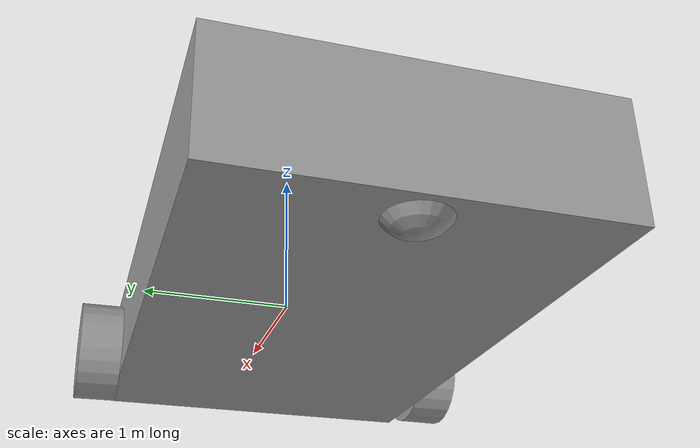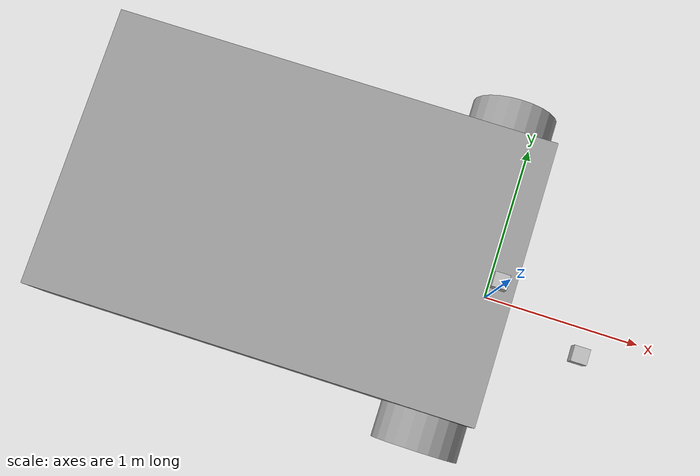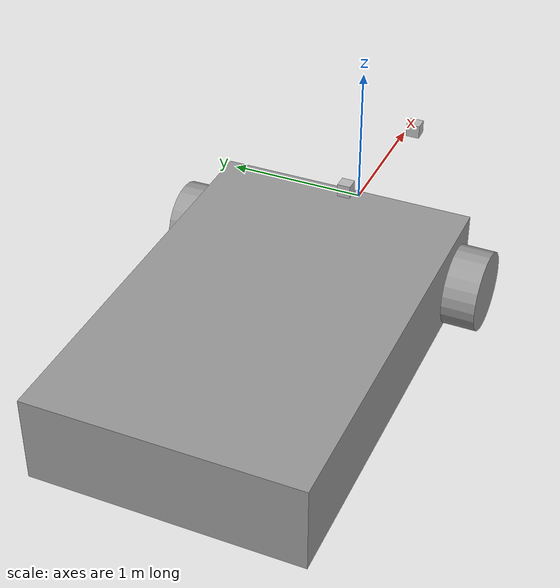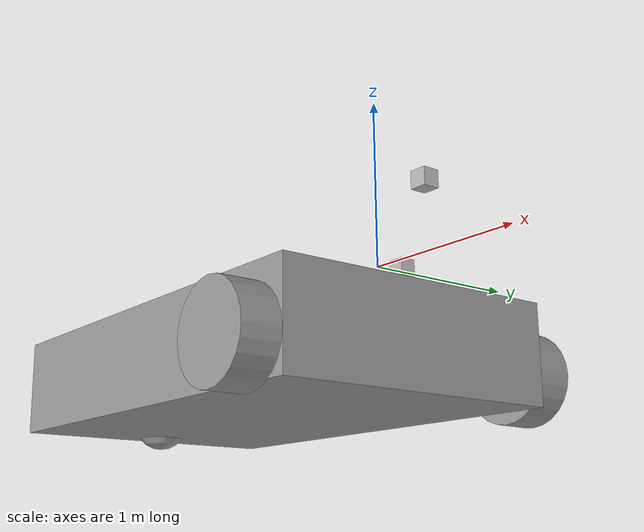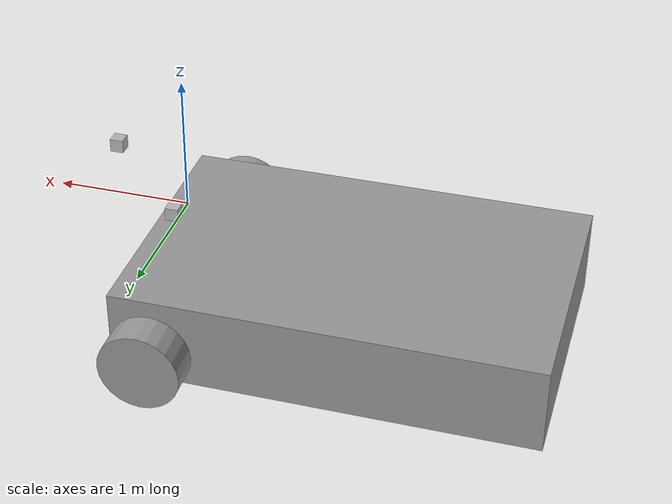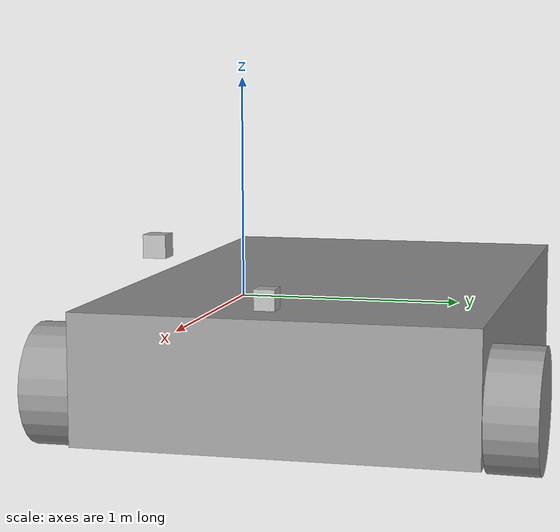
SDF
<?xml version='1.0'?>
<sdf version='1.6'>
  <model name='Untitled'>
    <model name='First_BOT'>
      <model name='Untitled_1'>
        <link name='link_0'>
          <inertial>
            <mass>3.84176</mass>
            <inertia>
              <ixx>1.34552</ixx>
              <ixy>0</ixy>
              <ixz>0</ixz>
              <iyy>3.1403</iyy>
              <iyz>0</iyz>
              <izz>4.22024</izz>
            </inertia>
            <pose frame=''>0 0 0 0 -0 0</pose>
          </inertial>
          <pose frame=''>-0.283122 -0.000178 0.09539 0 -0 0</pose>
          <gravity>1</gravity>
          <self_collide>0</self_collide>
          <kinematic>0</kinematic>
          <enable_wind>0</enable_wind>
          <visual name='visual'>
            <pose frame=''>0 0 0 0 -0 0</pose>
            <geometry>
              <box>
                <size>3.06499 1.94629 0.64404</size>
              </box>
            </geometry>
            <material>
              <lighting>1</lighting>
              <script>
                <uri>file://media/materials/scripts/gazebo.material</uri>
                <name>Gazebo/Grey</name>
              </script>
              <shader type='vertex'>
                <normal_map>__default__</normal_map>
              </shader>
              <ambient>0.3 0.3 0.3 1</ambient>
              <diffuse>0.7 0.7 0.7 1</diffuse>
              <specular>0.01 0.01 0.01 1</specular>
              <emissive>0 0 0 1</emissive>
            </material>
            <transparency>0</transparency>
            <cast_shadows>1</cast_shadows>
          </visual>
          <collision name='collision'>
            <laser_retro>0</laser_retro>
            <max_contacts>10</max_contacts>
            <pose frame=''>0 0 0 0 -0 0</pose>
            <geometry>
              <box>
                <size>3.06499 1.94629 0.64404</size>
              </box>
            </geometry>
            <surface>
              <friction>
                <ode>
                  <mu>1</mu>
                  <mu2>1</mu2>
                  <fdir1>0 0 0</fdir1>
                  <slip1>0</slip1>
                  <slip2>0</slip2>
                </ode>
                <torsional>
                  <coefficient>1</coefficient>
                  <patch_radius>0</patch_radius>
                  <surface_radius>0</surface_radius>
                  <use_patch_radius>1</use_patch_radius>
                  <ode>
                    <slip>0</slip>
                  </ode>
                </torsional>
              </friction>
              <bounce>
                <restitution_coefficient>0</restitution_coefficient>
                <threshold>1e+06</threshold>
              </bounce>
              <contact>
                <collide_without_contact>0</collide_without_contact>
                <collide_without_contact_bitmask>1</collide_without_contact_bitmask>
                <collide_bitmask>1</collide_bitmask>
                <ode>
                  <soft_cfm>0</soft_cfm>
                  <soft_erp>0.2</soft_erp>
                  <kp>1e+13</kp>
                  <kd>1</kd>
                  <max_vel>0.01</max_vel>
                  <min_depth>0</min_depth>
                </ode>
                <bullet>
                  <split_impulse>1</split_impulse>
                  <split_impulse_penetration_threshold>-0.01</split_impulse_penetration_threshold>
                  <soft_cfm>0</soft_cfm>
                  <soft_erp>0.2</soft_erp>
                  <kp>1e+13</kp>
                  <kd>1</kd>
                </bullet>
              </contact>
            </surface>
          </collision>
        </link>
        <link name='link_2'>
          <inertial>
            <mass>1</mass>
            <inertia>
              <ixx>0.145833</ixx>
              <ixy>0</ixy>
              <ixz>0</ixz>
              <iyy>0.145833</iyy>
              <iyz>0</iyz>
              <izz>0.125</izz>
            </inertia>
            <pose frame=''>0 0 0 1.5707 -0 0</pose>
          </inertial>
          <pose frame=''>0.949368 1.09916 -0.003911 -1.58269 0 0</pose>
          <gravity>1</gravity>
          <self_collide>0</self_collide>
          <kinematic>0</kinematic>
          <enable_wind>0</enable_wind>
          <visual name='visual'>
            <pose frame=''>0 0 0 0 -0 0</pose>
            <geometry>
              <cylinder>
                <radius>0.3</radius>
                <length>0.25</length>
              </cylinder>
            </geometry>
            <material>
              <lighting>1</lighting>
              <script>
                <uri>file://media/materials/scripts/gazebo.material</uri>
                <name>Gazebo/Grey</name>
              </script>
              <shader type='vertex'>
                <normal_map>__default__</normal_map>
              </shader>
              <ambient>0.3 0.3 0.3 1</ambient>
              <diffuse>0.7 0.7 0.7 1</diffuse>
              <specular>0.01 0.01 0.01 1</specular>
              <emissive>0 0 0 1</emissive>
            </material>
            <transparency>0</transparency>
            <cast_shadows>1</cast_shadows>
          </visual>
          <collision name='collision'>
            <laser_retro>0</laser_retro>
            <max_contacts>10</max_contacts>
            <pose frame=''>0 0 0 0 -0 0</pose>
            <geometry>
              <cylinder>
                <radius>0.3</radius>
                <length>0.25</length>
              </cylinder>
            </geometry>
            <surface>
              <friction>
                <ode>
                  <mu>1</mu>
                  <mu2>1</mu2>
                  <fdir1>0 0 0</fdir1>
                  <slip1>0</slip1>
                  <slip2>0</slip2>
                </ode>
                <torsional>
                  <coefficient>1</coefficient>
                  <patch_radius>0</patch_radius>
                  <surface_radius>0</surface_radius>
                  <use_patch_radius>1</use_patch_radius>
                  <ode>
                    <slip>0</slip>
                  </ode>
                </torsional>
              </friction>
              <bounce>
                <restitution_coefficient>0</restitution_coefficient>
                <threshold>1e+06</threshold>
              </bounce>
              <contact>
                <collide_without_contact>0</collide_without_contact>
                <collide_without_contact_bitmask>1</collide_without_contact_bitmask>
                <collide_bitmask>1</collide_bitmask>
                <ode>
                  <soft_cfm>0</soft_cfm>
                  <soft_erp>0.2</soft_erp>
                  <kp>1e+13</kp>
                  <kd>1</kd>
                  <max_vel>0.01</max_vel>
                  <min_depth>0</min_depth>
                </ode>
                <bullet>
                  <split_impulse>1</split_impulse>
                  <split_impulse_penetration_threshold>-0.01</split_impulse_penetration_threshold>
                  <soft_cfm>0</soft_cfm>
                  <soft_erp>0.2</soft_erp>
                  <kp>1e+13</kp>
                  <kd>1</kd>
                </bullet>
              </contact>
            </surface>
          </collision>
        </link>
        <link name='link_2_clone'>
          <inertial>
            <mass>1</mass>
            <inertia>
              <ixx>0.145833</ixx>
              <ixy>0</ixy>
              <ixz>0</ixz>
              <iyy>0.145833</iyy>
              <iyz>0</iyz>
              <izz>0.125</izz>
            </inertia>
            <pose frame=''>0 0 0.3 1.5707 -0 0</pose>
          </inertial>
          <pose frame=''>0.949368 -1.0988 0.01483 1.57482 -0 0</pose>
          <gravity>1</gravity>
          <self_collide>0</self_collide>
          <kinematic>0</kinematic>
          <enable_wind>0</enable_wind>
          <visual name='visual'>
            <pose frame=''>0 0 0 0 -0 0</pose>
            <geometry>
              <cylinder>
                <radius>0.3</radius>
                <length>0.25</length>
              </cylinder>
            </geometry>
            <material>
              <lighting>1</lighting>
              <script>
                <uri>file://media/materials/scripts/gazebo.material</uri>
                <name>Gazebo/Grey</name>
              </script>
              <shader type='vertex'>
                <normal_map>__default__</normal_map>
              </shader>
              <ambient>0.3 0.3 0.3 1</ambient>
              <diffuse>0.7 0.7 0.7 1</diffuse>
              <specular>0.01 0.01 0.01 1</specular>
              <emissive>0 0 0 1</emissive>
            </material>
            <transparency>0</transparency>
            <cast_shadows>1</cast_shadows>
          </visual>
          <collision name='collision'>
            <laser_retro>0</laser_retro>
            <max_contacts>10</max_contacts>
            <pose frame=''>0 0 0 0 -0 0</pose>
            <geometry>
              <cylinder>
                <radius>0.3</radius>
                <length>0.25</length>
              </cylinder>
            </geometry>
            <surface>
              <friction>
                <ode>
                  <mu>1</mu>
                  <mu2>1</mu2>
                  <fdir1>0 0 0</fdir1>
                  <slip1>0</slip1>
                  <slip2>0</slip2>
                </ode>
                <torsional>
                  <coefficient>1</coefficient>
                  <patch_radius>0</patch_radius>
                  <surface_radius>0</surface_radius>
                  <use_patch_radius>1</use_patch_radius>
                  <ode>
                    <slip>0</slip>
                  </ode>
                </torsional>
              </friction>
              <bounce>
                <restitution_coefficient>0</restitution_coefficient>
                <threshold>1e+06</threshold>
              </bounce>
              <contact>
                <collide_without_contact>0</collide_without_contact>
                <collide_without_contact_bitmask>1</collide_without_contact_bitmask>
                <collide_bitmask>1</collide_bitmask>
                <ode>
                  <soft_cfm>0</soft_cfm>
                  <soft_erp>0.2</soft_erp>
                  <kp>1e+13</kp>
                  <kd>1</kd>
                  <max_vel>0.01</max_vel>
                  <min_depth>0</min_depth>
                </ode>
                <bullet>
                  <split_impulse>1</split_impulse>
                  <split_impulse_penetration_threshold>-0.01</split_impulse_penetration_threshold>
                  <soft_cfm>0</soft_cfm>
                  <soft_erp>0.2</soft_erp>
                  <kp>1e+13</kp>
                  <kd>1</kd>
                </bullet>
              </contact>
            </surface>
          </collision>
        </link>
        <link name='link_6'>
          <inertial>
            <mass>1</mass>
            <inertia>
              <ixx>0.1</ixx>
              <ixy>0</ixy>
              <ixz>0</ixz>
              <iyy>0.1</iyy>
              <iyz>0</iyz>
              <izz>0.1</izz>
            </inertia>
            <pose frame=''>0 0 0.2 0 -0 0</pose>
          </inertial>
          <pose frame=''>-1.61562 -0.000178 -0.106308 0 -0 0</pose>
          <gravity>1</gravity>
          <self_collide>0</self_collide>
          <kinematic>0</kinematic>
          <enable_wind>0</enable_wind>
          <visual name='visual'>
            <pose frame=''>0 0 0 0 -0 0</pose>
            <geometry>
              <sphere>
                <radius>0.2</radius>
              </sphere>
            </geometry>
            <material>
              <lighting>1</lighting>
              <script>
                <uri>file://media/materials/scripts/gazebo.material</uri>
                <name>Gazebo/Grey</name>
              </script>
              <shader type='vertex'>
                <normal_map>__default__</normal_map>
              </shader>
              <ambient>0.3 0.3 0.3 1</ambient>
              <diffuse>0.7 0.7 0.7 1</diffuse>
              <specular>0.01 0.01 0.01 1</specular>
              <emissive>0 0 0 1</emissive>
            </material>
            <transparency>0</transparency>
            <cast_shadows>1</cast_shadows>
          </visual>
          <collision name='collision'>
            <laser_retro>0</laser_retro>
            <max_contacts>10</max_contacts>
            <pose frame=''>0 0 0 0 -0 0</pose>
            <geometry>
              <sphere>
                <radius>0.2</radius>
              </sphere>
            </geometry>
            <surface>
              <friction>
                <ode>
                  <mu>1</mu>
                  <mu2>1</mu2>
                  <fdir1>0 0 0</fdir1>
                  <slip1>0</slip1>
                  <slip2>0</slip2>
                </ode>
                <torsional>
                  <coefficient>1</coefficient>
                  <patch_radius>0</patch_radius>
                  <surface_radius>0</surface_radius>
                  <use_patch_radius>1</use_patch_radius>
                  <ode>
                    <slip>0</slip>
                  </ode>
                </torsional>
              </friction>
              <bounce>
                <restitution_coefficient>0</restitution_coefficient>
                <threshold>1e+06</threshold>
              </bounce>
              <contact>
                <collide_without_contact>0</collide_without_contact>
                <collide_without_contact_bitmask>1</collide_without_contact_bitmask>
                <collide_bitmask>1</collide_bitmask>
                <ode>
                  <soft_cfm>0</soft_cfm>
                  <soft_erp>0.2</soft_erp>
                  <kp>1e+13</kp>
                  <kd>1</kd>
                  <max_vel>0.01</max_vel>
                  <min_depth>0</min_depth>
                </ode>
                <bullet>
                  <split_impulse>1</split_impulse>
                  <split_impulse_penetration_threshold>-0.01</split_impulse_penetration_threshold>
                  <soft_cfm>0</soft_cfm>
                  <soft_erp>0.2</soft_erp>
                  <kp>1e+13</kp>
                  <kd>1</kd>
                </bullet>
              </contact>
            </surface>
          </collision>
        </link>
        <joint name='link_0_JOINT_0' type='revolute'>
          <parent>link_0</parent>
          <child>link_2_clone</child>
          <pose frame=''>0 0 0 0 -0 0</pose>
          <axis>
            <xyz>-0 -0 -1</xyz>
            <use_parent_model_frame>0</use_parent_model_frame>
            <limit>
              <lower>-1.79769e+308</lower>
              <upper>1.79769e+308</upper>
              <effort>-1</effort>
              <velocity>-1</velocity>
            </limit>
            <dynamics>
              <spring_reference>0</spring_reference>
              <spring_stiffness>0</spring_stiffness>
              <damping>0</damping>
            </dynamics>
          </axis>
          <physics>
            <ode>
              <limit>
                <cfm>0</cfm>
                <erp>0.2</erp>
              </limit>
              <suspension>
                <cfm>0</cfm>
                <erp>0.2</erp>
              </suspension>
            </ode>
          </physics>
        </joint>
        <joint name='link_0_JOINT_1' type='revolute'>
          <parent>link_0</parent>
          <child>link_2</child>
          <pose frame=''>0 0 0 0 -0 0</pose>
          <axis>
            <xyz>-0 -0 -1</xyz>
            <use_parent_model_frame>0</use_parent_model_frame>
            <limit>
              <lower>-1.79769e+308</lower>
              <upper>1.79769e+308</upper>
              <effort>-1</effort>
              <velocity>-1</velocity>
            </limit>
            <dynamics>
              <spring_reference>0</spring_reference>
              <spring_stiffness>0</spring_stiffness>
              <damping>0</damping>
            </dynamics>
          </axis>
          <physics>
            <ode>
              <limit>
                <cfm>0</cfm>
                <erp>0.2</erp>
              </limit>
              <suspension>
                <cfm>0</cfm>
                <erp>0.2</erp>
              </suspension>
            </ode>
          </physics>
        </joint>
        <joint name='link_0_JOINT_3' type='ball'>
          <parent>link_0</parent>
          <child>link_6</child>
          <pose frame=''>0 0 0 0 -0 0</pose>
          <physics>
            <ode>
              <limit>
                <cfm>0</cfm>
                <erp>0.2</erp>
              </limit>
              <suspension>
                <cfm>0</cfm>
                <erp>0.2</erp>
              </suspension>
            </ode>
          </physics>
        </joint>
        <static>0</static>
        <allow_auto_disable>1</allow_auto_disable>
        <pose frame=''>-0.46139 -0.04047 -0.202167 0 -0 0</pose>
      </model>
      <model name='depth_camera'>
        <link name='link'>
          <pose frame=''>0 0 0.05 0 -0 0</pose>
          <inertial>
            <mass>0.1</mass>
            <inertia>
              <ixx>0.000166667</ixx>
              <iyy>0.000166667</iyy>
              <izz>0.000166667</izz>
              <ixy>0</ixy>
              <ixz>0</ixz>
              <iyz>0</iyz>
            </inertia>
          </inertial>
          <collision name='collision'>
            <geometry>
              <box>
                <size>0.1 0.1 0.1</size>
              </box>
            </geometry>
          </collision>
          <visual name='visual'>
            <geometry>
              <box>
                <size>0.1 0.1 0.1</size>
              </box>
            </geometry>
          </visual>
          <sensor name='camera' type='depth'>
            <camera name='__default__'>
              <horizontal_fov>1.047</horizontal_fov>
              <image>
                <width>320</width>
                <height>240</height>
              </image>
              <clip>
                <near>0.1</near>
                <far>100</far>
              </clip>
            </camera>
            <always_on>1</always_on>
            <update_rate>30</update_rate>
            <visualize>1</visualize>
          </sensor>
        </link>
        <pose frame=''>0.669072 -0.078074 0.243672 0 -0 0</pose>
      </model>
      <joint name='link_0_JOINT_5' type='fixed'>
        <parent>Untitled_1::link_0</parent>
        <child>depth_camera::link</child>
        <pose frame=''>0 0 0 0 -0 0</pose>
        <physics>
          <ode>
            <limit>
              <cfm>0</cfm>
              <erp>0.2</erp>
            </limit>
            <suspension>
              <cfm>0</cfm>
              <erp>0.2</erp>
            </suspension>
          </ode>
        </physics>
      </joint>
      <static>0</static>
      <allow_auto_disable>1</allow_auto_disable>
      <plugin name='follower' filename='libFollowerPlugin.so'/>
      <pose frame=''>-0.606254 0.206053 -0.298426 0 -0 0</pose>
    </model>
    <model name='camera'>
      <pose frame=''>0.606246 -0.206053 0.298427 0 -0 0</pose>
      <link name='link'>
        <inertial>
          <mass>0.1</mass>
          <inertia>
            <ixx>0.000166667</ixx>
            <iyy>0.000166667</iyy>
            <izz>0.000166667</izz>
            <ixy>0</ixy>
            <ixz>0</ixz>
            <iyz>0</iyz>
          </inertia>
        </inertial>
        <collision name='collision'>
          <geometry>
            <box>
              <size>0.1 0.1 0.1</size>
            </box>
          </geometry>
        </collision>
        <visual name='visual'>
          <geometry>
            <box>
              <size>0.1 0.1 0.1</size>
            </box>
          </geometry>
        </visual>
        <sensor name='camera' type='camera'>
          <camera name='__default__'>
            <horizontal_fov>1.047</horizontal_fov>
            <image>
              <width>320</width>
              <height>240</height>
            </image>
            <clip>
              <near>0.1</near>
              <far>100</far>
            </clip>
          </camera>
          <always_on>1</always_on>
          <update_rate>30</update_rate>
          <visualize>1</visualize>
        </sensor>
      </link>
    </model>
    <joint name='link_0_JOINT_1' type='fixed'>
      <parent>First_BOT::Untitled_1::link_0</parent>
      <child>camera::link</child>
      <pose frame=''>0 0 0 0 -0 0</pose>
      <physics>
        <ode>
          <limit>
            <cfm>0</cfm>
            <erp>0.2</erp>
          </limit>
          <suspension>
            <cfm>0</cfm>
            <erp>0.2</erp>
          </suspension>
        </ode>
      </physics>
    </joint>
    <static>0</static>
    <allow_auto_disable>1</allow_auto_disable>
  </model>
</sdf>
